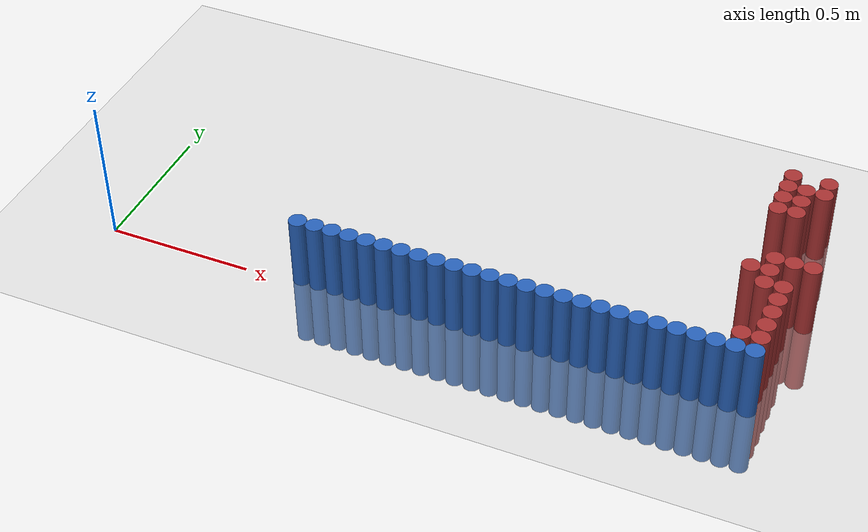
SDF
<sdf version="1.6">
 <world name="default">
  <model name="ground_plane">
   <static>1</static>
   <link name="link">
    <collision name="collision">
     <geometry><plane><normal>0 0 1</normal><size>100 100</size></plane></geometry>
     <surface><friction><ode><mu>100</mu><mu2>50</mu2></ode></friction></surface>
    </collision>
    <visual name="visual">
     <cast_shadows>0</cast_shadows>
     <geometry><plane><normal>0 0 1</normal><size>100 100</size></plane></geometry>
     <material>
      <script><uri>file://media/materials/scripts/gazebo.material</uri><name>Gazebo/Grey</name></script>
     </material>
    </visual>
   </link>
  </model>
  <model name="unit_cylinder_49">
   <static>1</static>
   <pose>0.690000 0.030000 0.000000 0.000000 0.000000 0.000000</pose>
   <link name="link">
    <inertial>
     <mass>1</mass>
     <inertia><ixx>0.145833</ixx><ixy>0</ixy><ixz>0</ixz><iyy>0.145833</iyy><iyz>0</iyz><izz>0.125</izz></inertia>
    </inertial>
    <collision name="collision">
     <geometry><cylinder><radius>0.030000</radius><length>0.5</length></cylinder></geometry>
    </collision>
    <visual name="visual">
     <geometry><cylinder><radius>0.030000</radius><length>0.5</length></cylinder></geometry>
     <material>
      <ambient>0.152000 0.379000 0.720000 1</ambient>
      <diffuse>0.152000 0.379000 0.720000 1</diffuse>
     </material>
     <material>
      <script><name>Gazebo/Grey</name><uri>file://media/materials/scripts/gazebo.material</uri></script>
     </material>
    </visual>
   </link>
  </model>
  <model name="unit_cylinder_51">
   <static>1</static>
   <pose>0.750000 0.030000 0.000000 0.000000 0.000000 0.000000</pose>
   <link name="link">
    <inertial>
     <mass>1</mass>
     <inertia><ixx>0.145833</ixx><ixy>0</ixy><ixz>0</ixz><iyy>0.145833</iyy><iyz>0</iyz><izz>0.125</izz></inertia>
    </inertial>
    <collision name="collision">
     <geometry><cylinder><radius>0.030000</radius><length>0.5</length></cylinder></geometry>
    </collision>
    <visual name="visual">
     <geometry><cylinder><radius>0.030000</radius><length>0.5</length></cylinder></geometry>
     <material>
      <ambient>0.152000 0.379000 0.720000 1</ambient>
      <diffuse>0.152000 0.379000 0.720000 1</diffuse>
     </material>
     <material>
      <script><name>Gazebo/Grey</name><uri>file://media/materials/scripts/gazebo.material</uri></script>
     </material>
    </visual>
   </link>
  </model>
  <model name="unit_cylinder_53">
   <static>1</static>
   <pose>0.810000 0.030000 0.000000 0.000000 0.000000 0.000000</pose>
   <link name="link">
    <inertial>
     <mass>1</mass>
     <inertia><ixx>0.145833</ixx><ixy>0</ixy><ixz>0</ixz><iyy>0.145833</iyy><iyz>0</iyz><izz>0.125</izz></inertia>
    </inertial>
    <collision name="collision">
     <geometry><cylinder><radius>0.030000</radius><length>0.5</length></cylinder></geometry>
    </collision>
    <visual name="visual">
     <geometry><cylinder><radius>0.030000</radius><length>0.5</length></cylinder></geometry>
     <material>
      <ambient>0.152000 0.379000 0.720000 1</ambient>
      <diffuse>0.152000 0.379000 0.720000 1</diffuse>
     </material>
     <material>
      <script><name>Gazebo/Grey</name><uri>file://media/materials/scripts/gazebo.material</uri></script>
     </material>
    </visual>
   </link>
  </model>
  <model name="unit_cylinder_55">
   <static>1</static>
   <pose>0.870000 0.030000 0.000000 0.000000 0.000000 0.000000</pose>
   <link name="link">
    <inertial>
     <mass>1</mass>
     <inertia><ixx>0.145833</ixx><ixy>0</ixy><ixz>0</ixz><iyy>0.145833</iyy><iyz>0</iyz><izz>0.125</izz></inertia>
    </inertial>
    <collision name="collision">
     <geometry><cylinder><radius>0.030000</radius><length>0.5</length></cylinder></geometry>
    </collision>
    <visual name="visual">
     <geometry><cylinder><radius>0.030000</radius><length>0.5</length></cylinder></geometry>
     <material>
      <ambient>0.152000 0.379000 0.720000 1</ambient>
      <diffuse>0.152000 0.379000 0.720000 1</diffuse>
     </material>
     <material>
      <script><name>Gazebo/Grey</name><uri>file://media/materials/scripts/gazebo.material</uri></script>
     </material>
    </visual>
   </link>
  </model>
  <model name="unit_cylinder_57">
   <static>1</static>
   <pose>0.930000 0.030000 0.000000 0.000000 0.000000 0.000000</pose>
   <link name="link">
    <inertial>
     <mass>1</mass>
     <inertia><ixx>0.145833</ixx><ixy>0</ixy><ixz>0</ixz><iyy>0.145833</iyy><iyz>0</iyz><izz>0.125</izz></inertia>
    </inertial>
    <collision name="collision">
     <geometry><cylinder><radius>0.030000</radius><length>0.5</length></cylinder></geometry>
    </collision>
    <visual name="visual">
     <geometry><cylinder><radius>0.030000</radius><length>0.5</length></cylinder></geometry>
     <material>
      <ambient>0.152000 0.379000 0.720000 1</ambient>
      <diffuse>0.152000 0.379000 0.720000 1</diffuse>
     </material>
     <material>
      <script><name>Gazebo/Grey</name><uri>file://media/materials/scripts/gazebo.material</uri></script>
     </material>
    </visual>
   </link>
  </model>
  <model name="unit_cylinder_59">
   <static>1</static>
   <pose>0.990000 0.030000 0.000000 0.000000 0.000000 0.000000</pose>
   <link name="link">
    <inertial>
     <mass>1</mass>
     <inertia><ixx>0.145833</ixx><ixy>0</ixy><ixz>0</ixz><iyy>0.145833</iyy><iyz>0</iyz><izz>0.125</izz></inertia>
    </inertial>
    <collision name="collision">
     <geometry><cylinder><radius>0.030000</radius><length>0.5</length></cylinder></geometry>
    </collision>
    <visual name="visual">
     <geometry><cylinder><radius>0.030000</radius><length>0.5</length></cylinder></geometry>
     <material>
      <ambient>0.152000 0.379000 0.720000 1</ambient>
      <diffuse>0.152000 0.379000 0.720000 1</diffuse>
     </material>
     <material>
      <script><name>Gazebo/Grey</name><uri>file://media/materials/scripts/gazebo.material</uri></script>
     </material>
    </visual>
   </link>
  </model>
  <model name="unit_cylinder_61">
   <static>1</static>
   <pose>1.050000 0.030000 0.000000 0.000000 0.000000 0.000000</pose>
   <link name="link">
    <inertial>
     <mass>1</mass>
     <inertia><ixx>0.145833</ixx><ixy>0</ixy><ixz>0</ixz><iyy>0.145833</iyy><iyz>0</iyz><izz>0.125</izz></inertia>
    </inertial>
    <collision name="collision">
     <geometry><cylinder><radius>0.030000</radius><length>0.5</length></cylinder></geometry>
    </collision>
    <visual name="visual">
     <geometry><cylinder><radius>0.030000</radius><length>0.5</length></cylinder></geometry>
     <material>
      <ambient>0.152000 0.379000 0.720000 1</ambient>
      <diffuse>0.152000 0.379000 0.720000 1</diffuse>
     </material>
     <material>
      <script><name>Gazebo/Grey</name><uri>file://media/materials/scripts/gazebo.material</uri></script>
     </material>
    </visual>
   </link>
  </model>
  <model name="unit_cylinder_63">
   <static>1</static>
   <pose>1.110000 0.030000 0.000000 0.000000 0.000000 0.000000</pose>
   <link name="link">
    <inertial>
     <mass>1</mass>
     <inertia><ixx>0.145833</ixx><ixy>0</ixy><ixz>0</ixz><iyy>0.145833</iyy><iyz>0</iyz><izz>0.125</izz></inertia>
    </inertial>
    <collision name="collision">
     <geometry><cylinder><radius>0.030000</radius><length>0.5</length></cylinder></geometry>
    </collision>
    <visual name="visual">
     <geometry><cylinder><radius>0.030000</radius><length>0.5</length></cylinder></geometry>
     <material>
      <ambient>0.152000 0.379000 0.720000 1</ambient>
      <diffuse>0.152000 0.379000 0.720000 1</diffuse>
     </material>
     <material>
      <script><name>Gazebo/Grey</name><uri>file://media/materials/scripts/gazebo.material</uri></script>
     </material>
    </visual>
   </link>
  </model>
  <model name="unit_cylinder_65">
   <static>1</static>
   <pose>1.170000 0.030000 0.000000 0.000000 0.000000 0.000000</pose>
   <link name="link">
    <inertial>
     <mass>1</mass>
     <inertia><ixx>0.145833</ixx><ixy>0</ixy><ixz>0</ixz><iyy>0.145833</iyy><iyz>0</iyz><izz>0.125</izz></inertia>
    </inertial>
    <collision name="collision">
     <geometry><cylinder><radius>0.030000</radius><length>0.5</length></cylinder></geometry>
    </collision>
    <visual name="visual">
     <geometry><cylinder><radius>0.030000</radius><length>0.5</length></cylinder></geometry>
     <material>
      <ambient>0.152000 0.379000 0.720000 1</ambient>
      <diffuse>0.152000 0.379000 0.720000 1</diffuse>
     </material>
     <material>
      <script><name>Gazebo/Grey</name><uri>file://media/materials/scripts/gazebo.material</uri></script>
     </material>
    </visual>
   </link>
  </model>
  <model name="unit_cylinder_67">
   <static>1</static>
   <pose>1.230000 0.030000 0.000000 0.000000 0.000000 0.000000</pose>
   <link name="link">
    <inertial>
     <mass>1</mass>
     <inertia><ixx>0.145833</ixx><ixy>0</ixy><ixz>0</ixz><iyy>0.145833</iyy><iyz>0</iyz><izz>0.125</izz></inertia>
    </inertial>
    <collision name="collision">
     <geometry><cylinder><radius>0.030000</radius><length>0.5</length></cylinder></geometry>
    </collision>
    <visual name="visual">
     <geometry><cylinder><radius>0.030000</radius><length>0.5</length></cylinder></geometry>
     <material>
      <ambient>0.152000 0.379000 0.720000 1</ambient>
      <diffuse>0.152000 0.379000 0.720000 1</diffuse>
     </material>
     <material>
      <script><name>Gazebo/Grey</name><uri>file://media/materials/scripts/gazebo.material</uri></script>
     </material>
    </visual>
   </link>
  </model>
  <model name="unit_cylinder_69">
   <static>1</static>
   <pose>1.290000 0.030000 0.000000 0.000000 0.000000 0.000000</pose>
   <link name="link">
    <inertial>
     <mass>1</mass>
     <inertia><ixx>0.145833</ixx><ixy>0</ixy><ixz>0</ixz><iyy>0.145833</iyy><iyz>0</iyz><izz>0.125</izz></inertia>
    </inertial>
    <collision name="collision">
     <geometry><cylinder><radius>0.030000</radius><length>0.5</length></cylinder></geometry>
    </collision>
    <visual name="visual">
     <geometry><cylinder><radius>0.030000</radius><length>0.5</length></cylinder></geometry>
     <material>
      <ambient>0.152000 0.379000 0.720000 1</ambient>
      <diffuse>0.152000 0.379000 0.720000 1</diffuse>
     </material>
     <material>
      <script><name>Gazebo/Grey</name><uri>file://media/materials/scripts/gazebo.material</uri></script>
     </material>
    </visual>
   </link>
  </model>
  <model name="unit_cylinder_71">
   <static>1</static>
   <pose>1.350000 0.030000 0.000000 0.000000 0.000000 0.000000</pose>
   <link name="link">
    <inertial>
     <mass>1</mass>
     <inertia><ixx>0.145833</ixx><ixy>0</ixy><ixz>0</ixz><iyy>0.145833</iyy><iyz>0</iyz><izz>0.125</izz></inertia>
    </inertial>
    <collision name="collision">
     <geometry><cylinder><radius>0.030000</radius><length>0.5</length></cylinder></geometry>
    </collision>
    <visual name="visual">
     <geometry><cylinder><radius>0.030000</radius><length>0.5</length></cylinder></geometry>
     <material>
      <ambient>0.152000 0.379000 0.720000 1</ambient>
      <diffuse>0.152000 0.379000 0.720000 1</diffuse>
     </material>
     <material>
      <script><name>Gazebo/Grey</name><uri>file://media/materials/scripts/gazebo.material</uri></script>
     </material>
    </visual>
   </link>
  </model>
  <model name="unit_cylinder_73">
   <static>1</static>
   <pose>1.410000 0.030000 0.000000 0.000000 0.000000 0.000000</pose>
   <link name="link">
    <inertial>
     <mass>1</mass>
     <inertia><ixx>0.145833</ixx><ixy>0</ixy><ixz>0</ixz><iyy>0.145833</iyy><iyz>0</iyz><izz>0.125</izz></inertia>
    </inertial>
    <collision name="collision">
     <geometry><cylinder><radius>0.030000</radius><length>0.5</length></cylinder></geometry>
    </collision>
    <visual name="visual">
     <geometry><cylinder><radius>0.030000</radius><length>0.5</length></cylinder></geometry>
     <material>
      <ambient>0.152000 0.379000 0.720000 1</ambient>
      <diffuse>0.152000 0.379000 0.720000 1</diffuse>
     </material>
     <material>
      <script><name>Gazebo/Grey</name><uri>file://media/materials/scripts/gazebo.material</uri></script>
     </material>
    </visual>
   </link>
  </model>
  <model name="unit_cylinder_75">
   <static>1</static>
   <pose>1.470000 0.030000 0.000000 0.000000 0.000000 0.000000</pose>
   <link name="link">
    <inertial>
     <mass>1</mass>
     <inertia><ixx>0.145833</ixx><ixy>0</ixy><ixz>0</ixz><iyy>0.145833</iyy><iyz>0</iyz><izz>0.125</izz></inertia>
    </inertial>
    <collision name="collision">
     <geometry><cylinder><radius>0.030000</radius><length>0.5</length></cylinder></geometry>
    </collision>
    <visual name="visual">
     <geometry><cylinder><radius>0.030000</radius><length>0.5</length></cylinder></geometry>
     <material>
      <ambient>0.152000 0.379000 0.720000 1</ambient>
      <diffuse>0.152000 0.379000 0.720000 1</diffuse>
     </material>
     <material>
      <script><name>Gazebo/Grey</name><uri>file://media/materials/scripts/gazebo.material</uri></script>
     </material>
    </visual>
   </link>
  </model>
  <model name="unit_cylinder_77">
   <static>1</static>
   <pose>1.530000 0.030000 0.000000 0.000000 0.000000 0.000000</pose>
   <link name="link">
    <inertial>
     <mass>1</mass>
     <inertia><ixx>0.145833</ixx><ixy>0</ixy><ixz>0</ixz><iyy>0.145833</iyy><iyz>0</iyz><izz>0.125</izz></inertia>
    </inertial>
    <collision name="collision">
     <geometry><cylinder><radius>0.030000</radius><length>0.5</length></cylinder></geometry>
    </collision>
    <visual name="visual">
     <geometry><cylinder><radius>0.030000</radius><length>0.5</length></cylinder></geometry>
     <material>
      <ambient>0.152000 0.379000 0.720000 1</ambient>
      <diffuse>0.152000 0.379000 0.720000 1</diffuse>
     </material>
     <material>
      <script><name>Gazebo/Grey</name><uri>file://media/materials/scripts/gazebo.material</uri></script>
     </material>
    </visual>
   </link>
  </model>
  <model name="unit_cylinder_79">
   <static>1</static>
   <pose>1.590000 0.030000 0.000000 0.000000 0.000000 0.000000</pose>
   <link name="link">
    <inertial>
     <mass>1</mass>
     <inertia><ixx>0.145833</ixx><ixy>0</ixy><ixz>0</ixz><iyy>0.145833</iyy><iyz>0</iyz><izz>0.125</izz></inertia>
    </inertial>
    <collision name="collision">
     <geometry><cylinder><radius>0.030000</radius><length>0.5</length></cylinder></geometry>
    </collision>
    <visual name="visual">
     <geometry><cylinder><radius>0.030000</radius><length>0.5</length></cylinder></geometry>
     <material>
      <ambient>0.152000 0.379000 0.720000 1</ambient>
      <diffuse>0.152000 0.379000 0.720000 1</diffuse>
     </material>
     <material>
      <script><name>Gazebo/Grey</name><uri>file://media/materials/scripts/gazebo.material</uri></script>
     </material>
    </visual>
   </link>
  </model>
  <model name="unit_cylinder_81">
   <static>1</static>
   <pose>1.650000 0.030000 0.000000 0.000000 0.000000 0.000000</pose>
   <link name="link">
    <inertial>
     <mass>1</mass>
     <inertia><ixx>0.145833</ixx><ixy>0</ixy><ixz>0</ixz><iyy>0.145833</iyy><iyz>0</iyz><izz>0.125</izz></inertia>
    </inertial>
    <collision name="collision">
     <geometry><cylinder><radius>0.030000</radius><length>0.5</length></cylinder></geometry>
    </collision>
    <visual name="visual">
     <geometry><cylinder><radius>0.030000</radius><length>0.5</length></cylinder></geometry>
     <material>
      <ambient>0.152000 0.379000 0.720000 1</ambient>
      <diffuse>0.152000 0.379000 0.720000 1</diffuse>
     </material>
     <material>
      <script><name>Gazebo/Grey</name><uri>file://media/materials/scripts/gazebo.material</uri></script>
     </material>
    </visual>
   </link>
  </model>
  <model name="unit_cylinder_83">
   <static>1</static>
   <pose>1.710000 0.030000 0.000000 0.000000 0.000000 0.000000</pose>
   <link name="link">
    <inertial>
     <mass>1</mass>
     <inertia><ixx>0.145833</ixx><ixy>0</ixy><ixz>0</ixz><iyy>0.145833</iyy><iyz>0</iyz><izz>0.125</izz></inertia>
    </inertial>
    <collision name="collision">
     <geometry><cylinder><radius>0.030000</radius><length>0.5</length></cylinder></geometry>
    </collision>
    <visual name="visual">
     <geometry><cylinder><radius>0.030000</radius><length>0.5</length></cylinder></geometry>
     <material>
      <ambient>0.152000 0.379000 0.720000 1</ambient>
      <diffuse>0.152000 0.379000 0.720000 1</diffuse>
     </material>
     <material>
      <script><name>Gazebo/Grey</name><uri>file://media/materials/scripts/gazebo.material</uri></script>
     </material>
    </visual>
   </link>
  </model>
  <model name="unit_cylinder_85">
   <static>1</static>
   <pose>1.770000 0.030000 0.000000 0.000000 0.000000 0.000000</pose>
   <link name="link">
    <inertial>
     <mass>1</mass>
     <inertia><ixx>0.145833</ixx><ixy>0</ixy><ixz>0</ixz><iyy>0.145833</iyy><iyz>0</iyz><izz>0.125</izz></inertia>
    </inertial>
    <collision name="collision">
     <geometry><cylinder><radius>0.030000</radius><length>0.5</length></cylinder></geometry>
    </collision>
    <visual name="visual">
     <geometry><cylinder><radius>0.030000</radius><length>0.5</length></cylinder></geometry>
     <material>
      <ambient>0.152000 0.379000 0.720000 1</ambient>
      <diffuse>0.152000 0.379000 0.720000 1</diffuse>
     </material>
     <material>
      <script><name>Gazebo/Grey</name><uri>file://media/materials/scripts/gazebo.material</uri></script>
     </material>
    </visual>
   </link>
  </model>
  <model name="unit_cylinder_87">
   <static>1</static>
   <pose>1.830000 0.030000 0.000000 0.000000 0.000000 0.000000</pose>
   <link name="link">
    <inertial>
     <mass>1</mass>
     <inertia><ixx>0.145833</ixx><ixy>0</ixy><ixz>0</ixz><iyy>0.145833</iyy><iyz>0</iyz><izz>0.125</izz></inertia>
    </inertial>
    <collision name="collision">
     <geometry><cylinder><radius>0.030000</radius><length>0.5</length></cylinder></geometry>
    </collision>
    <visual name="visual">
     <geometry><cylinder><radius>0.030000</radius><length>0.5</length></cylinder></geometry>
     <material>
      <ambient>0.152000 0.379000 0.720000 1</ambient>
      <diffuse>0.152000 0.379000 0.720000 1</diffuse>
     </material>
     <material>
      <script><name>Gazebo/Grey</name><uri>file://media/materials/scripts/gazebo.material</uri></script>
     </material>
    </visual>
   </link>
  </model>
  <model name="unit_cylinder_89">
   <static>1</static>
   <pose>1.890000 0.030000 0.000000 0.000000 0.000000 0.000000</pose>
   <link name="link">
    <inertial>
     <mass>1</mass>
     <inertia><ixx>0.145833</ixx><ixy>0</ixy><ixz>0</ixz><iyy>0.145833</iyy><iyz>0</iyz><izz>0.125</izz></inertia>
    </inertial>
    <collision name="collision">
     <geometry><cylinder><radius>0.030000</radius><length>0.5</length></cylinder></geometry>
    </collision>
    <visual name="visual">
     <geometry><cylinder><radius>0.030000</radius><length>0.5</length></cylinder></geometry>
     <material>
      <ambient>0.152000 0.379000 0.720000 1</ambient>
      <diffuse>0.152000 0.379000 0.720000 1</diffuse>
     </material>
     <material>
      <script><name>Gazebo/Grey</name><uri>file://media/materials/scripts/gazebo.material</uri></script>
     </material>
    </visual>
   </link>
  </model>
  <model name="unit_cylinder_91">
   <static>1</static>
   <pose>1.950000 0.030000 0.000000 0.000000 0.000000 0.000000</pose>
   <link name="link">
    <inertial>
     <mass>1</mass>
     <inertia><ixx>0.145833</ixx><ixy>0</ixy><ixz>0</ixz><iyy>0.145833</iyy><iyz>0</iyz><izz>0.125</izz></inertia>
    </inertial>
    <collision name="collision">
     <geometry><cylinder><radius>0.030000</radius><length>0.5</length></cylinder></geometry>
    </collision>
    <visual name="visual">
     <geometry><cylinder><radius>0.030000</radius><length>0.5</length></cylinder></geometry>
     <material>
      <ambient>0.152000 0.379000 0.720000 1</ambient>
      <diffuse>0.152000 0.379000 0.720000 1</diffuse>
     </material>
     <material>
      <script><name>Gazebo/Grey</name><uri>file://media/materials/scripts/gazebo.material</uri></script>
     </material>
    </visual>
   </link>
  </model>
  <model name="unit_cylinder_93">
   <static>1</static>
   <pose>2.010000 0.030000 0.000000 0.000000 0.000000 0.000000</pose>
   <link name="link">
    <inertial>
     <mass>1</mass>
     <inertia><ixx>0.145833</ixx><ixy>0</ixy><ixz>0</ixz><iyy>0.145833</iyy><iyz>0</iyz><izz>0.125</izz></inertia>
    </inertial>
    <collision name="collision">
     <geometry><cylinder><radius>0.030000</radius><length>0.5</length></cylinder></geometry>
    </collision>
    <visual name="visual">
     <geometry><cylinder><radius>0.030000</radius><length>0.5</length></cylinder></geometry>
     <material>
      <ambient>0.152000 0.379000 0.720000 1</ambient>
      <diffuse>0.152000 0.379000 0.720000 1</diffuse>
     </material>
     <material>
      <script><name>Gazebo/Grey</name><uri>file://media/materials/scripts/gazebo.material</uri></script>
     </material>
    </visual>
   </link>
  </model>
  <model name="unit_cylinder_199">
   <static>1</static>
   <pose>2.070000 0.870000 0.000000 0.000000 0.000000 0.000000</pose>
   <link name="link">
    <inertial>
     <mass>1</mass>
     <inertia><ixx>0.145833</ixx><ixy>0</ixy><ixz>0</ixz><iyy>0.145833</iyy><iyz>0</iyz><izz>0.125</izz></inertia>
    </inertial>
    <collision name="collision">
     <geometry><cylinder><radius>0.030000</radius><length>0.5</length></cylinder></geometry>
    </collision>
    <visual name="visual">
     <geometry><cylinder><radius>0.030000</radius><length>0.5</length></cylinder></geometry>
     <material>
      <ambient>0.648000 0.192000 0.192000 1</ambient>
      <diffuse>0.648000 0.192000 0.192000 1</diffuse>
     </material>
     <material>
      <script><name>Gazebo/Grey</name><uri>file://media/materials/scripts/gazebo.material</uri></script>
     </material>
    </visual>
   </link>
  </model>
  <model name="unit_cylinder_200">
   <static>1</static>
   <pose>2.190000 0.870000 0.000000 0.000000 0.000000 0.000000</pose>
   <link name="link">
    <inertial>
     <mass>1</mass>
     <inertia><ixx>0.145833</ixx><ixy>0</ixy><ixz>0</ixz><iyy>0.145833</iyy><iyz>0</iyz><izz>0.125</izz></inertia>
    </inertial>
    <collision name="collision">
     <geometry><cylinder><radius>0.030000</radius><length>0.5</length></cylinder></geometry>
    </collision>
    <visual name="visual">
     <geometry><cylinder><radius>0.030000</radius><length>0.5</length></cylinder></geometry>
     <material>
      <ambient>0.648000 0.192000 0.192000 1</ambient>
      <diffuse>0.648000 0.192000 0.192000 1</diffuse>
     </material>
     <material>
      <script><name>Gazebo/Grey</name><uri>file://media/materials/scripts/gazebo.material</uri></script>
     </material>
    </visual>
   </link>
  </model>
  <model name="unit_cylinder_202">
   <static>1</static>
   <pose>2.070000 0.810000 0.000000 0.000000 0.000000 0.000000</pose>
   <link name="link">
    <inertial>
     <mass>1</mass>
     <inertia><ixx>0.145833</ixx><ixy>0</ixy><ixz>0</ixz><iyy>0.145833</iyy><iyz>0</iyz><izz>0.125</izz></inertia>
    </inertial>
    <collision name="collision">
     <geometry><cylinder><radius>0.030000</radius><length>0.5</length></cylinder></geometry>
    </collision>
    <visual name="visual">
     <geometry><cylinder><radius>0.030000</radius><length>0.5</length></cylinder></geometry>
     <material>
      <ambient>0.648000 0.192000 0.192000 1</ambient>
      <diffuse>0.648000 0.192000 0.192000 1</diffuse>
     </material>
     <material>
      <script><name>Gazebo/Grey</name><uri>file://media/materials/scripts/gazebo.material</uri></script>
     </material>
    </visual>
   </link>
  </model>
  <model name="unit_cylinder_203">
   <static>1</static>
   <pose>2.130000 0.810000 0.000000 0.000000 0.000000 0.000000</pose>
   <link name="link">
    <inertial>
     <mass>1</mass>
     <inertia><ixx>0.145833</ixx><ixy>0</ixy><ixz>0</ixz><iyy>0.145833</iyy><iyz>0</iyz><izz>0.125</izz></inertia>
    </inertial>
    <collision name="collision">
     <geometry><cylinder><radius>0.030000</radius><length>0.5</length></cylinder></geometry>
    </collision>
    <visual name="visual">
     <geometry><cylinder><radius>0.030000</radius><length>0.5</length></cylinder></geometry>
     <material>
      <ambient>0.648000 0.192000 0.192000 1</ambient>
      <diffuse>0.648000 0.192000 0.192000 1</diffuse>
     </material>
     <material>
      <script><name>Gazebo/Grey</name><uri>file://media/materials/scripts/gazebo.material</uri></script>
     </material>
    </visual>
   </link>
  </model>
  <model name="unit_cylinder_204">
   <static>1</static>
   <pose>2.190000 0.810000 0.000000 0.000000 0.000000 0.000000</pose>
   <link name="link">
    <inertial>
     <mass>1</mass>
     <inertia><ixx>0.145833</ixx><ixy>0</ixy><ixz>0</ixz><iyy>0.145833</iyy><iyz>0</iyz><izz>0.125</izz></inertia>
    </inertial>
    <collision name="collision">
     <geometry><cylinder><radius>0.030000</radius><length>0.5</length></cylinder></geometry>
    </collision>
    <visual name="visual">
     <geometry><cylinder><radius>0.030000</radius><length>0.5</length></cylinder></geometry>
     <material>
      <ambient>0.648000 0.192000 0.192000 1</ambient>
      <diffuse>0.648000 0.192000 0.192000 1</diffuse>
     </material>
     <material>
      <script><name>Gazebo/Grey</name><uri>file://media/materials/scripts/gazebo.material</uri></script>
     </material>
    </visual>
   </link>
  </model>
  <model name="unit_cylinder_208">
   <static>1</static>
   <pose>2.070000 0.750000 0.000000 0.000000 0.000000 0.000000</pose>
   <link name="link">
    <inertial>
     <mass>1</mass>
     <inertia><ixx>0.145833</ixx><ixy>0</ixy><ixz>0</ixz><iyy>0.145833</iyy><iyz>0</iyz><izz>0.125</izz></inertia>
    </inertial>
    <collision name="collision">
     <geometry><cylinder><radius>0.030000</radius><length>0.5</length></cylinder></geometry>
    </collision>
    <visual name="visual">
     <geometry><cylinder><radius>0.030000</radius><length>0.5</length></cylinder></geometry>
     <material>
      <ambient>0.648000 0.192000 0.192000 1</ambient>
      <diffuse>0.648000 0.192000 0.192000 1</diffuse>
     </material>
     <material>
      <script><name>Gazebo/Grey</name><uri>file://media/materials/scripts/gazebo.material</uri></script>
     </material>
    </visual>
   </link>
  </model>
  <model name="unit_cylinder_209">
   <static>1</static>
   <pose>2.130000 0.750000 0.000000 0.000000 0.000000 0.000000</pose>
   <link name="link">
    <inertial>
     <mass>1</mass>
     <inertia><ixx>0.145833</ixx><ixy>0</ixy><ixz>0</ixz><iyy>0.145833</iyy><iyz>0</iyz><izz>0.125</izz></inertia>
    </inertial>
    <collision name="collision">
     <geometry><cylinder><radius>0.030000</radius><length>0.5</length></cylinder></geometry>
    </collision>
    <visual name="visual">
     <geometry><cylinder><radius>0.030000</radius><length>0.5</length></cylinder></geometry>
     <material>
      <ambient>0.648000 0.192000 0.192000 1</ambient>
      <diffuse>0.648000 0.192000 0.192000 1</diffuse>
     </material>
     <material>
      <script><name>Gazebo/Grey</name><uri>file://media/materials/scripts/gazebo.material</uri></script>
     </material>
    </visual>
   </link>
  </model>
  <model name="unit_cylinder_213">
   <static>1</static>
   <pose>2.070000 0.690000 0.000000 0.000000 0.000000 0.000000</pose>
   <link name="link">
    <inertial>
     <mass>1</mass>
     <inertia><ixx>0.145833</ixx><ixy>0</ixy><ixz>0</ixz><iyy>0.145833</iyy><iyz>0</iyz><izz>0.125</izz></inertia>
    </inertial>
    <collision name="collision">
     <geometry><cylinder><radius>0.030000</radius><length>0.5</length></cylinder></geometry>
    </collision>
    <visual name="visual">
     <geometry><cylinder><radius>0.030000</radius><length>0.5</length></cylinder></geometry>
     <material>
      <ambient>0.648000 0.192000 0.192000 1</ambient>
      <diffuse>0.648000 0.192000 0.192000 1</diffuse>
     </material>
     <material>
      <script><name>Gazebo/Grey</name><uri>file://media/materials/scripts/gazebo.material</uri></script>
     </material>
    </visual>
   </link>
  </model>
  <model name="unit_cylinder_214">
   <static>1</static>
   <pose>2.130000 0.690000 0.000000 0.000000 0.000000 0.000000</pose>
   <link name="link">
    <inertial>
     <mass>1</mass>
     <inertia><ixx>0.145833</ixx><ixy>0</ixy><ixz>0</ixz><iyy>0.145833</iyy><iyz>0</iyz><izz>0.125</izz></inertia>
    </inertial>
    <collision name="collision">
     <geometry><cylinder><radius>0.030000</radius><length>0.5</length></cylinder></geometry>
    </collision>
    <visual name="visual">
     <geometry><cylinder><radius>0.030000</radius><length>0.5</length></cylinder></geometry>
     <material>
      <ambient>0.648000 0.192000 0.192000 1</ambient>
      <diffuse>0.648000 0.192000 0.192000 1</diffuse>
     </material>
     <material>
      <script><name>Gazebo/Grey</name><uri>file://media/materials/scripts/gazebo.material</uri></script>
     </material>
    </visual>
   </link>
  </model>
  <model name="unit_cylinder_242">
   <static>1</static>
   <pose>2.130000 0.450000 0.000000 0.000000 0.000000 0.000000</pose>
   <link name="link">
    <inertial>
     <mass>1</mass>
     <inertia><ixx>0.145833</ixx><ixy>0</ixy><ixz>0</ixz><iyy>0.145833</iyy><iyz>0</iyz><izz>0.125</izz></inertia>
    </inertial>
    <collision name="collision">
     <geometry><cylinder><radius>0.030000</radius><length>0.5</length></cylinder></geometry>
    </collision>
    <visual name="visual">
     <geometry><cylinder><radius>0.030000</radius><length>0.5</length></cylinder></geometry>
     <material>
      <ambient>0.648000 0.192000 0.192000 1</ambient>
      <diffuse>0.648000 0.192000 0.192000 1</diffuse>
     </material>
     <material>
      <script><name>Gazebo/Grey</name><uri>file://media/materials/scripts/gazebo.material</uri></script>
     </material>
    </visual>
   </link>
  </model>
  <model name="unit_cylinder_243">
   <static>1</static>
   <pose>2.190000 0.450000 0.000000 0.000000 0.000000 0.000000</pose>
   <link name="link">
    <inertial>
     <mass>1</mass>
     <inertia><ixx>0.145833</ixx><ixy>0</ixy><ixz>0</ixz><iyy>0.145833</iyy><iyz>0</iyz><izz>0.125</izz></inertia>
    </inertial>
    <collision name="collision">
     <geometry><cylinder><radius>0.030000</radius><length>0.5</length></cylinder></geometry>
    </collision>
    <visual name="visual">
     <geometry><cylinder><radius>0.030000</radius><length>0.5</length></cylinder></geometry>
     <material>
      <ambient>0.648000 0.192000 0.192000 1</ambient>
      <diffuse>0.648000 0.192000 0.192000 1</diffuse>
     </material>
     <material>
      <script><name>Gazebo/Grey</name><uri>file://media/materials/scripts/gazebo.material</uri></script>
     </material>
    </visual>
   </link>
  </model>
  <model name="unit_cylinder_244">
   <static>1</static>
   <pose>2.250000 0.450000 0.000000 0.000000 0.000000 0.000000</pose>
   <link name="link">
    <inertial>
     <mass>1</mass>
     <inertia><ixx>0.145833</ixx><ixy>0</ixy><ixz>0</ixz><iyy>0.145833</iyy><iyz>0</iyz><izz>0.125</izz></inertia>
    </inertial>
    <collision name="collision">
     <geometry><cylinder><radius>0.030000</radius><length>0.5</length></cylinder></geometry>
    </collision>
    <visual name="visual">
     <geometry><cylinder><radius>0.030000</radius><length>0.5</length></cylinder></geometry>
     <material>
      <ambient>0.648000 0.192000 0.192000 1</ambient>
      <diffuse>0.648000 0.192000 0.192000 1</diffuse>
     </material>
     <material>
      <script><name>Gazebo/Grey</name><uri>file://media/materials/scripts/gazebo.material</uri></script>
     </material>
    </visual>
   </link>
  </model>
  <model name="unit_cylinder_247">
   <static>1</static>
   <pose>2.070000 0.390000 0.000000 0.000000 0.000000 0.000000</pose>
   <link name="link">
    <inertial>
     <mass>1</mass>
     <inertia><ixx>0.145833</ixx><ixy>0</ixy><ixz>0</ixz><iyy>0.145833</iyy><iyz>0</iyz><izz>0.125</izz></inertia>
    </inertial>
    <collision name="collision">
     <geometry><cylinder><radius>0.030000</radius><length>0.5</length></cylinder></geometry>
    </collision>
    <visual name="visual">
     <geometry><cylinder><radius>0.030000</radius><length>0.5</length></cylinder></geometry>
     <material>
      <ambient>0.648000 0.192000 0.192000 1</ambient>
      <diffuse>0.648000 0.192000 0.192000 1</diffuse>
     </material>
     <material>
      <script><name>Gazebo/Grey</name><uri>file://media/materials/scripts/gazebo.material</uri></script>
     </material>
    </visual>
   </link>
  </model>
  <model name="unit_cylinder_248">
   <static>1</static>
   <pose>2.130000 0.390000 0.000000 0.000000 0.000000 0.000000</pose>
   <link name="link">
    <inertial>
     <mass>1</mass>
     <inertia><ixx>0.145833</ixx><ixy>0</ixy><ixz>0</ixz><iyy>0.145833</iyy><iyz>0</iyz><izz>0.125</izz></inertia>
    </inertial>
    <collision name="collision">
     <geometry><cylinder><radius>0.030000</radius><length>0.5</length></cylinder></geometry>
    </collision>
    <visual name="visual">
     <geometry><cylinder><radius>0.030000</radius><length>0.5</length></cylinder></geometry>
     <material>
      <ambient>0.648000 0.192000 0.192000 1</ambient>
      <diffuse>0.648000 0.192000 0.192000 1</diffuse>
     </material>
     <material>
      <script><name>Gazebo/Grey</name><uri>file://media/materials/scripts/gazebo.material</uri></script>
     </material>
    </visual>
   </link>
  </model>
  <model name="unit_cylinder_250">
   <static>1</static>
   <pose>2.130000 0.330000 0.000000 0.000000 0.000000 0.000000</pose>
   <link name="link">
    <inertial>
     <mass>1</mass>
     <inertia><ixx>0.145833</ixx><ixy>0</ixy><ixz>0</ixz><iyy>0.145833</iyy><iyz>0</iyz><izz>0.125</izz></inertia>
    </inertial>
    <collision name="collision">
     <geometry><cylinder><radius>0.030000</radius><length>0.5</length></cylinder></geometry>
    </collision>
    <visual name="visual">
     <geometry><cylinder><radius>0.030000</radius><length>0.5</length></cylinder></geometry>
     <material>
      <ambient>0.648000 0.192000 0.192000 1</ambient>
      <diffuse>0.648000 0.192000 0.192000 1</diffuse>
     </material>
     <material>
      <script><name>Gazebo/Grey</name><uri>file://media/materials/scripts/gazebo.material</uri></script>
     </material>
    </visual>
   </link>
  </model>
  <model name="unit_cylinder_251">
   <static>1</static>
   <pose>2.190000 0.330000 0.000000 0.000000 0.000000 0.000000</pose>
   <link name="link">
    <inertial>
     <mass>1</mass>
     <inertia><ixx>0.145833</ixx><ixy>0</ixy><ixz>0</ixz><iyy>0.145833</iyy><iyz>0</iyz><izz>0.125</izz></inertia>
    </inertial>
    <collision name="collision">
     <geometry><cylinder><radius>0.030000</radius><length>0.5</length></cylinder></geometry>
    </collision>
    <visual name="visual">
     <geometry><cylinder><radius>0.030000</radius><length>0.5</length></cylinder></geometry>
     <material>
      <ambient>0.648000 0.192000 0.192000 1</ambient>
      <diffuse>0.648000 0.192000 0.192000 1</diffuse>
     </material>
     <material>
      <script><name>Gazebo/Grey</name><uri>file://media/materials/scripts/gazebo.material</uri></script>
     </material>
    </visual>
   </link>
  </model>
  <model name="unit_cylinder_257">
   <static>1</static>
   <pose>2.190000 0.270000 0.000000 0.000000 0.000000 0.000000</pose>
   <link name="link">
    <inertial>
     <mass>1</mass>
     <inertia><ixx>0.145833</ixx><ixy>0</ixy><ixz>0</ixz><iyy>0.145833</iyy><iyz>0</iyz><izz>0.125</izz></inertia>
    </inertial>
    <collision name="collision">
     <geometry><cylinder><radius>0.030000</radius><length>0.5</length></cylinder></geometry>
    </collision>
    <visual name="visual">
     <geometry><cylinder><radius>0.030000</radius><length>0.5</length></cylinder></geometry>
     <material>
      <ambient>0.648000 0.192000 0.192000 1</ambient>
      <diffuse>0.648000 0.192000 0.192000 1</diffuse>
     </material>
     <material>
      <script><name>Gazebo/Grey</name><uri>file://media/materials/scripts/gazebo.material</uri></script>
     </material>
    </visual>
   </link>
  </model>
  <model name="unit_cylinder_270">
   <static>1</static>
   <pose>2.190000 0.210000 0.000000 0.000000 0.000000 0.000000</pose>
   <link name="link">
    <inertial>
     <mass>1</mass>
     <inertia><ixx>0.145833</ixx><ixy>0</ixy><ixz>0</ixz><iyy>0.145833</iyy><iyz>0</iyz><izz>0.125</izz></inertia>
    </inertial>
    <collision name="collision">
     <geometry><cylinder><radius>0.030000</radius><length>0.5</length></cylinder></geometry>
    </collision>
    <visual name="visual">
     <geometry><cylinder><radius>0.030000</radius><length>0.5</length></cylinder></geometry>
     <material>
      <ambient>0.648000 0.192000 0.192000 1</ambient>
      <diffuse>0.648000 0.192000 0.192000 1</diffuse>
     </material>
     <material>
      <script><name>Gazebo/Grey</name><uri>file://media/materials/scripts/gazebo.material</uri></script>
     </material>
    </visual>
   </link>
  </model>
  <model name="unit_cylinder_279">
   <static>1</static>
   <pose>2.190000 0.150000 0.000000 0.000000 0.000000 0.000000</pose>
   <link name="link">
    <inertial>
     <mass>1</mass>
     <inertia><ixx>0.145833</ixx><ixy>0</ixy><ixz>0</ixz><iyy>0.145833</iyy><iyz>0</iyz><izz>0.125</izz></inertia>
    </inertial>
    <collision name="collision">
     <geometry><cylinder><radius>0.030000</radius><length>0.5</length></cylinder></geometry>
    </collision>
    <visual name="visual">
     <geometry><cylinder><radius>0.030000</radius><length>0.5</length></cylinder></geometry>
     <material>
      <ambient>0.648000 0.192000 0.192000 1</ambient>
      <diffuse>0.648000 0.192000 0.192000 1</diffuse>
     </material>
     <material>
      <script><name>Gazebo/Grey</name><uri>file://media/materials/scripts/gazebo.material</uri></script>
     </material>
    </visual>
   </link>
  </model>
  <model name="unit_cylinder_291">
   <static>1</static>
   <pose>2.130000 0.090000 0.000000 0.000000 0.000000 0.000000</pose>
   <link name="link">
    <inertial>
     <mass>1</mass>
     <inertia><ixx>0.145833</ixx><ixy>0</ixy><ixz>0</ixz><iyy>0.145833</iyy><iyz>0</iyz><izz>0.125</izz></inertia>
    </inertial>
    <collision name="collision">
     <geometry><cylinder><radius>0.030000</radius><length>0.5</length></cylinder></geometry>
    </collision>
    <visual name="visual">
     <geometry><cylinder><radius>0.030000</radius><length>0.5</length></cylinder></geometry>
     <material>
      <ambient>0.648000 0.192000 0.192000 1</ambient>
      <diffuse>0.648000 0.192000 0.192000 1</diffuse>
     </material>
     <material>
      <script><name>Gazebo/Grey</name><uri>file://media/materials/scripts/gazebo.material</uri></script>
     </material>
    </visual>
   </link>
  </model>
  <model name="unit_cylinder_292">
   <static>1</static>
   <pose>2.190000 0.090000 0.000000 0.000000 0.000000 0.000000</pose>
   <link name="link">
    <inertial>
     <mass>1</mass>
     <inertia><ixx>0.145833</ixx><ixy>0</ixy><ixz>0</ixz><iyy>0.145833</iyy><iyz>0</iyz><izz>0.125</izz></inertia>
    </inertial>
    <collision name="collision">
     <geometry><cylinder><radius>0.030000</radius><length>0.5</length></cylinder></geometry>
    </collision>
    <visual name="visual">
     <geometry><cylinder><radius>0.030000</radius><length>0.5</length></cylinder></geometry>
     <material>
      <ambient>0.648000 0.192000 0.192000 1</ambient>
      <diffuse>0.648000 0.192000 0.192000 1</diffuse>
     </material>
     <material>
      <script><name>Gazebo/Grey</name><uri>file://media/materials/scripts/gazebo.material</uri></script>
     </material>
    </visual>
   </link>
  </model>
  <model name="unit_cylinder_304">
   <static>1</static>
   <pose>2.070000 0.030000 0.000000 0.000000 0.000000 0.000000</pose>
   <link name="link">
    <inertial>
     <mass>1</mass>
     <inertia><ixx>0.145833</ixx><ixy>0</ixy><ixz>0</ixz><iyy>0.145833</iyy><iyz>0</iyz><izz>0.125</izz></inertia>
    </inertial>
    <collision name="collision">
     <geometry><cylinder><radius>0.030000</radius><length>0.5</length></cylinder></geometry>
    </collision>
    <visual name="visual">
     <geometry><cylinder><radius>0.030000</radius><length>0.5</length></cylinder></geometry>
     <material>
      <ambient>0.152000 0.379000 0.720000 1</ambient>
      <diffuse>0.152000 0.379000 0.720000 1</diffuse>
     </material>
     <material>
      <script><name>Gazebo/Grey</name><uri>file://media/materials/scripts/gazebo.material</uri></script>
     </material>
    </visual>
   </link>
  </model>
  <model name="unit_cylinder_305">
   <static>1</static>
   <pose>2.130000 0.030000 0.000000 0.000000 0.000000 0.000000</pose>
   <link name="link">
    <inertial>
     <mass>1</mass>
     <inertia><ixx>0.145833</ixx><ixy>0</ixy><ixz>0</ixz><iyy>0.145833</iyy><iyz>0</iyz><izz>0.125</izz></inertia>
    </inertial>
    <collision name="collision">
     <geometry><cylinder><radius>0.030000</radius><length>0.5</length></cylinder></geometry>
    </collision>
    <visual name="visual">
     <geometry><cylinder><radius>0.030000</radius><length>0.5</length></cylinder></geometry>
     <material>
      <ambient>0.152000 0.379000 0.720000 1</ambient>
      <diffuse>0.152000 0.379000 0.720000 1</diffuse>
     </material>
     <material>
      <script><name>Gazebo/Grey</name><uri>file://media/materials/scripts/gazebo.material</uri></script>
     </material>
    </visual>
   </link>
  </model>
  <model name="unit_cylinder_306">
   <static>1</static>
   <pose>2.190000 0.030000 0.000000 0.000000 0.000000 0.000000</pose>
   <link name="link">
    <inertial>
     <mass>1</mass>
     <inertia><ixx>0.145833</ixx><ixy>0</ixy><ixz>0</ixz><iyy>0.145833</iyy><iyz>0</iyz><izz>0.125</izz></inertia>
    </inertial>
    <collision name="collision">
     <geometry><cylinder><radius>0.030000</radius><length>0.5</length></cylinder></geometry>
    </collision>
    <visual name="visual">
     <geometry><cylinder><radius>0.030000</radius><length>0.5</length></cylinder></geometry>
     <material>
      <ambient>0.152000 0.379000 0.720000 1</ambient>
      <diffuse>0.152000 0.379000 0.720000 1</diffuse>
     </material>
     <material>
      <script><name>Gazebo/Grey</name><uri>file://media/materials/scripts/gazebo.material</uri></script>
     </material>
    </visual>
   </link>
  </model>
 </world>
</sdf>
